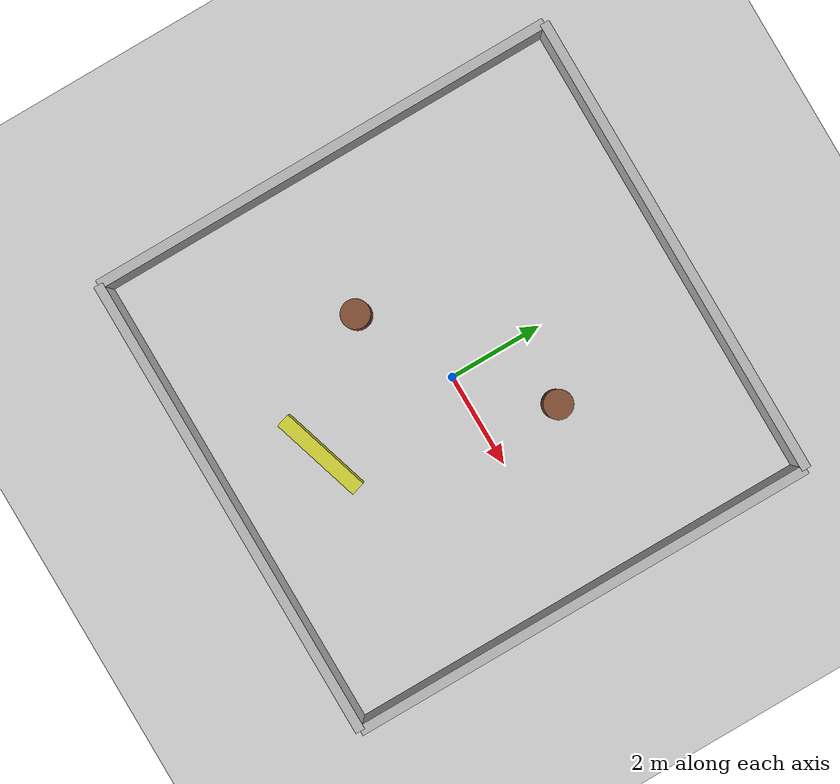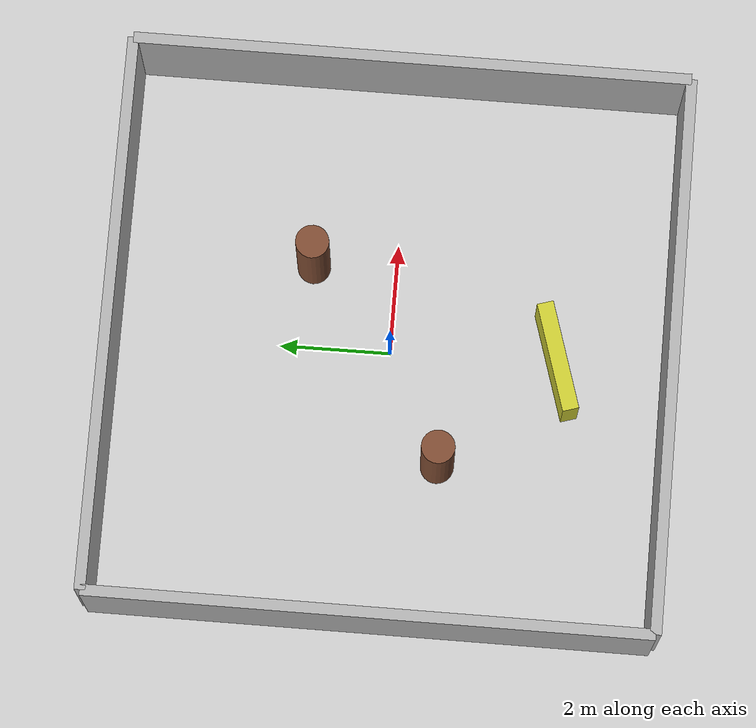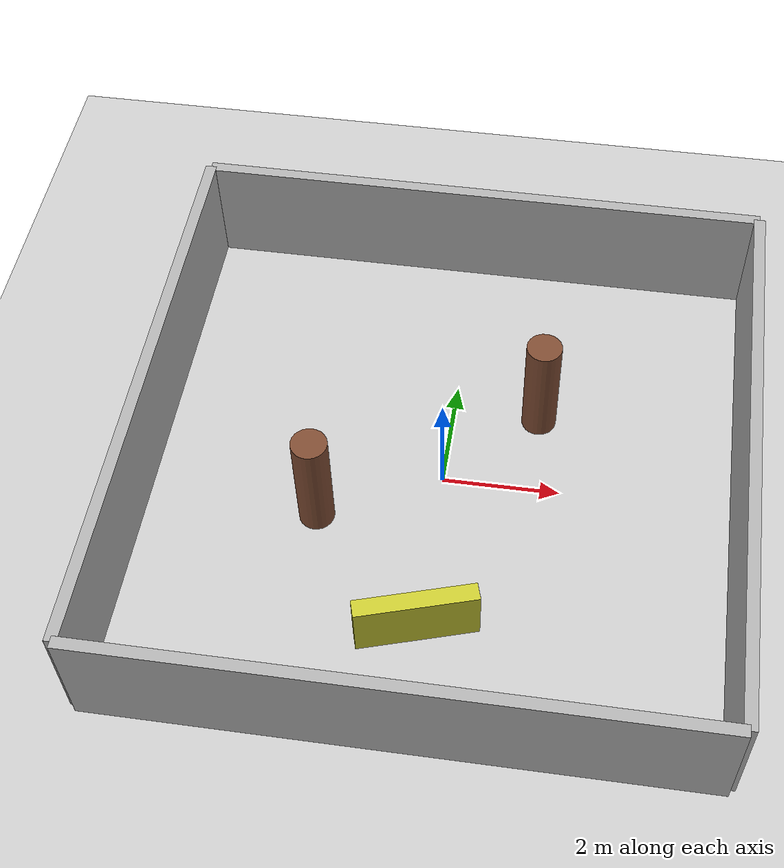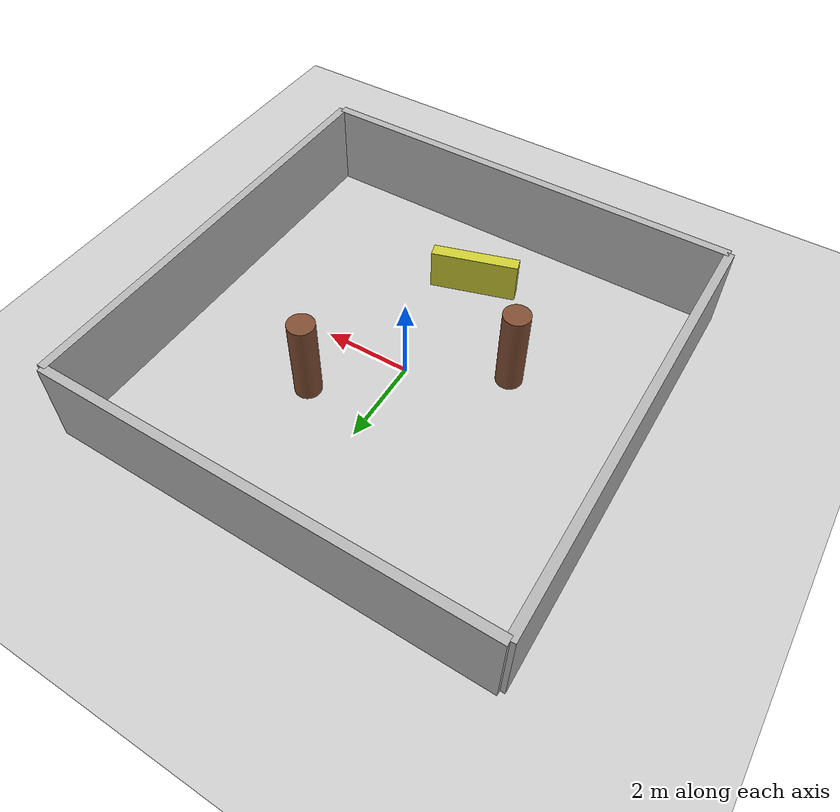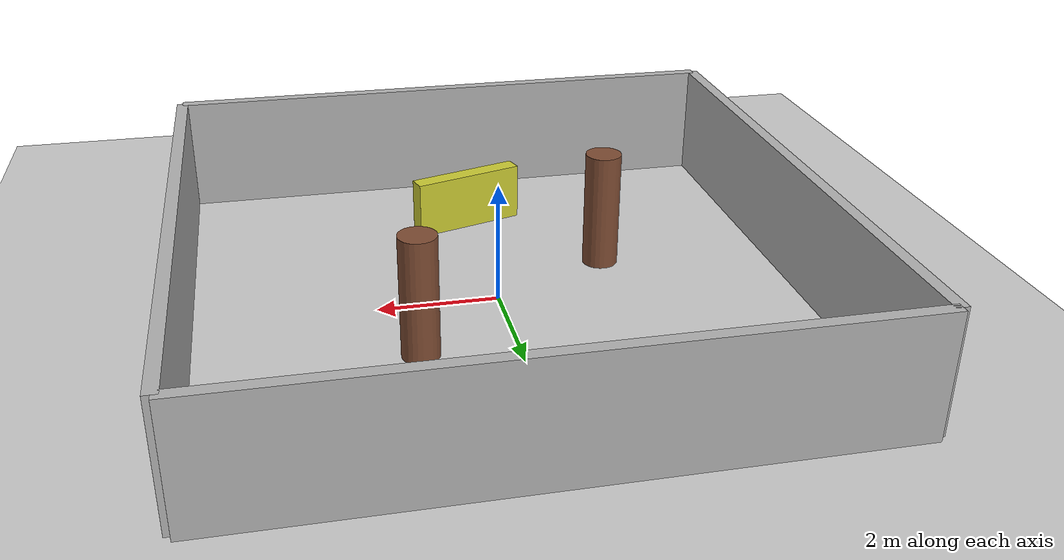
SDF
<?xml version="1.0" ?>
<sdf version="1.5">
    <world name="office">
        <physics type="ode">
            <max_step_size>0.002</max_step_size>
            <real_time_update_rate>500</real_time_update_rate>
        </physics>
        <include><uri>model://sun</uri></include>
        <include><uri>model://ground_plane</uri></include>

        <!-- Outer walls -->
        <model name="wall_north"><static>true</static>
            <link name="link"><collision name="coll"><geometry><box><size>10 0.2 2</size></box></geometry></collision>
            <visual name="visual"><geometry><box><size>10 0.2 2</size></box></geometry><material><ambient>0.7 0.7 0.7 1</ambient></material></visual>
            </link><pose>0 5 1 0 0 0</pose></model>
        <model name="wall_south"><static>true</static>
            <link name="link"><collision name="coll"><geometry><box><size>10 0.2 2</size></box></geometry></collision>
            <visual name="visual"><geometry><box><size>10 0.2 2</size></box></geometry><material><ambient>0.7 0.7 0.7 1</ambient></material></visual>
            </link><pose>0 -5 1 0 0 0</pose></model>
        <model name="wall_east"><static>true</static>
            <link name="link"><collision name="coll"><geometry><box><size>0.2 10 2</size></box></geometry></collision>
            <visual name="visual"><geometry><box><size>0.2 10 2</size></box></geometry><material><ambient>0.7 0.7 0.7 1</ambient></material></visual>
            </link><pose>5 0 1 0 0 0</pose></model>
        <model name="wall_west"><static>true</static>
            <link name="link"><collision name="coll"><geometry><box><size>0.2 10 2</size></box></geometry></collision>
            <visual name="visual"><geometry><box><size>0.2 10 2</size></box></geometry><material><ambient>0.7 0.7 0.7 1</ambient></material></visual>
            </link><pose>-5 0 1 0 0 0</pose></model>

        <!-- Inner obstacle -->
        <model name="pillar1"><static>true</static>
            <link name="link"><collision name="coll"><geometry><cylinder><radius>0.3</radius><length>2</length></cylinder></geometry></collision>
            <visual name="visual"><geometry><cylinder><radius>0.3</radius><length>2</length></cylinder></geometry><material><ambient>0.5 0.3 0.2 1</ambient></material></visual>
            </link><pose>1.5 1.5 1 0 0 0</pose></model>
        <model name="pillar2"><static>true</static>
            <link name="link"><collision name="coll"><geometry><cylinder><radius>0.3</radius><length>2</length></cylinder></geometry></collision>
            <visual name="visual"><geometry><cylinder><radius>0.3</radius><length>2</length></cylinder></geometry><material><ambient>0.5 0.3 0.2 1</ambient></material></visual>
            </link><pose>-2 -1 1 0 0 0</pose></model>

        <!-- Box barrier -->
        <model name="barrier"><static>true</static>
            <link name="link"><collision name="coll"><geometry><box><size>2 0.3 1</size></box></geometry></collision>
            <visual name="visual"><geometry><box><size>2 0.3 1</size></box></geometry><material><ambient>0.8 0.8 0.2 1</ambient></material></visual>
            </link><pose>0 -3 0.5 0 0 0.3</pose></model>
    </world>
</sdf>
